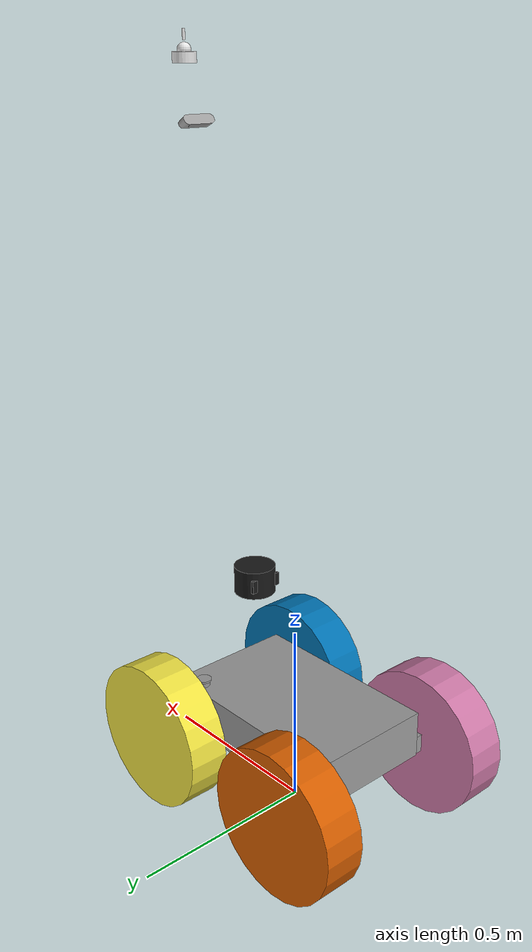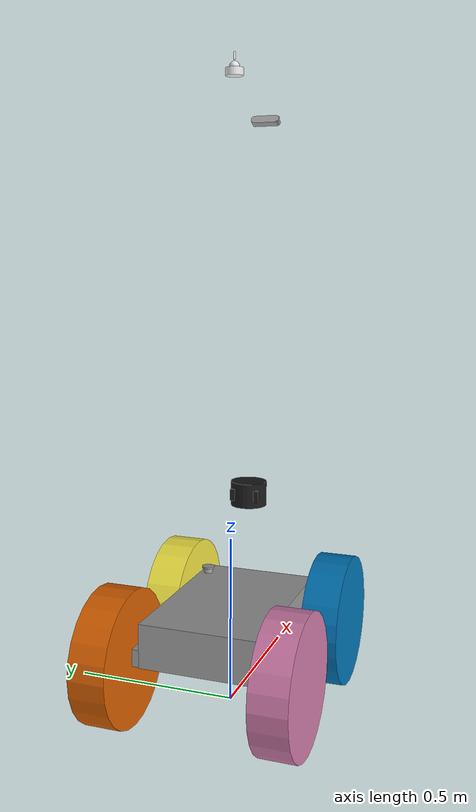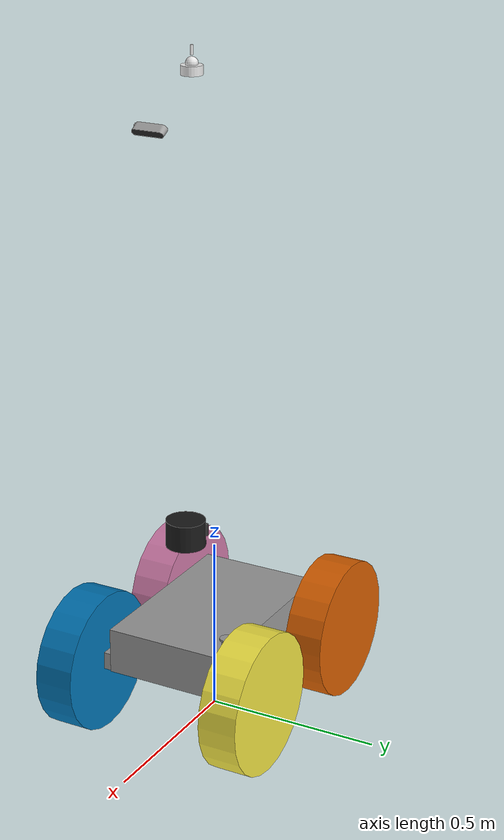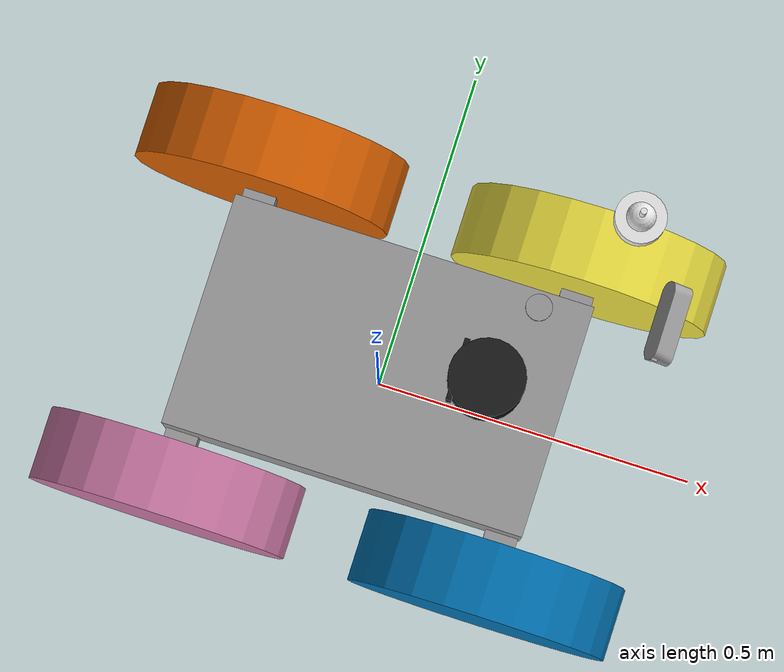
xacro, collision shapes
<?xml version="1.0" encoding="UTF-8"?>
<robot xmlns:xacro="http://wiki.ros.org/xacro" name="allie">

  <!-- Use this if parameters are set from the launch file, otherwise delete -->
  <xacro:arg name="prefix" default=""/>

  <xacro:arg name="use_mock_hardware" default="false"/>
  <xacro:arg name="mock_sensor_commands" default="false"/>
  <xacro:arg name="sim_gazebo_classic" default="false"/>
  <xacro:arg name="sim_gazebo" default="false"/>
  <xacro:arg name="simulation_controllers" default=""/>
  <xacro:arg name="attach_world" default="true"/>
  <xacro:arg name="pwm_config_file" default="$(find cororos2_bringup)/config/pwm.yaml"/>
  <xacro:property name="pwm_config" value="${xacro.load_yaml('$(arg pwm_config_file)')}"/>
  <xacro:arg name="device_path" default="${pwm_config['device_path']}"/>
  <xacro:arg name="channel_fl" default="${pwm_config['channel_fl']}"/>
  <xacro:arg name="channel_fr" default="${pwm_config['channel_fr']}"/>
  <xacro:arg name="channel_rl" default="${pwm_config['channel_rl']}"/>
  <xacro:arg name="channel_rr" default="${pwm_config['channel_rr']}"/>
  <xacro:arg name="pwm_min" default="${pwm_config['pwm_min']}"/>
  <xacro:arg name="pwm_neutral" default="${pwm_config['pwm_neutral']}"/>
  <xacro:arg name="pwm_max" default="${pwm_config['pwm_max']}"/>
  <xacro:arg name="min_active_pwm_delta" default="${pwm_config['min_active_pwm_delta']}"/>
  <xacro:arg name="wheel_radius" default="${pwm_config['wheel_radius']}"/>
  <xacro:arg name="max_wheel_speed_mps" default="${pwm_config['max_wheel_speed_mps']}"/>
  <xacro:arg name="invert_left" default="${pwm_config['invert_left']}"/>
  <xacro:arg name="invert_right" default="${pwm_config['invert_right']}"/>
  <xacro:arg name="invert_fl" default="${pwm_config.get('invert_fl', pwm_config['invert_left'])}"/>
  <xacro:arg name="invert_fr" default="${pwm_config.get('invert_fr', pwm_config['invert_right'])}"/>
  <xacro:arg name="invert_rl" default="${pwm_config.get('invert_rl', pwm_config['invert_left'])}"/>
  <xacro:arg name="invert_rr" default="${pwm_config.get('invert_rr', pwm_config['invert_right'])}"/>

  <xacro:include filename="$(find cororos2_description)/urdf/allie/allie_macro.xacro"/>
  <xacro:include filename="$(find cororos2_description)/urdf/allie/allie_macro.ros2_control.xacro"/>

  <xacro:if value="$(arg attach_world)">
    <!-- create link fixed to the "world" -->
    <link name="world"/>

    <!-- Load robot's macro with parameters -->
    <!-- set prefix if multiple robots are used -->
    <xacro:allie prefix="$(arg prefix)" parent="world">
      <origin xyz="0 0 0" rpy="0 0 0"/>          <!-- position robot in the world -->
    </xacro:allie>
  </xacro:if>

  <xacro:unless value="$(arg attach_world)">
    <xacro:allie prefix="$(arg prefix)" parent="">
      <origin xyz="0 0 0" rpy="0 0 0"/>
    </xacro:allie>
  </xacro:unless>

  <xacro:allie_ros2_control
    name="allie"
    prefix="$(arg prefix)"
    use_mock_hardware="$(arg use_mock_hardware)"
    mock_sensor_commands="$(arg mock_sensor_commands)"
    sim_gazebo_classic="$(arg sim_gazebo_classic)"
    sim_gazebo="$(arg sim_gazebo)"
    simulation_controllers="$(arg simulation_controllers)"
    device_path="$(arg device_path)"
    channel_fl="$(arg channel_fl)"
    channel_fr="$(arg channel_fr)"
    channel_rl="$(arg channel_rl)"
    channel_rr="$(arg channel_rr)"
    pwm_min="$(arg pwm_min)"
    pwm_neutral="$(arg pwm_neutral)"
    pwm_max="$(arg pwm_max)"
    min_active_pwm_delta="$(arg min_active_pwm_delta)"
    wheel_radius="$(arg wheel_radius)"
    max_wheel_speed_mps="$(arg max_wheel_speed_mps)"
    invert_left="$(arg invert_left)"
    invert_right="$(arg invert_right)"
    invert_fl="$(arg invert_fl)"
    invert_fr="$(arg invert_fr)"
    invert_rl="$(arg invert_rl)"
    invert_rr="$(arg invert_rr)"/>

</robot>

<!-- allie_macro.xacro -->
<robot xmlns:xacro="http://wiki.ros.org/xacro">
  <xacro:macro name="allie" params="prefix parent *origin">
    <!-- LINKS -->
    <!-- base footprint -->
    <link name="${prefix}base_footprint">
    </link>
    <!-- base link -->
    <link name="${prefix}base_link">
      <inertial>
        <origin xyz="0 0 0.09" rpy="0 0 0" />
        <mass value="26.6" />
        <inertia ixx="0.387" ixy="0" ixz="0" iyy="0.790" iyz="0" izz="0.962" />
      </inertial>

      <!-- collisions -->
      <collision name="chassis_main_collision">
        <origin xyz="0 0 0.05" rpy="0 0 0" />
        <geometry>
          <box size="0.555 0.355 0.13" />
        </geometry>
      </collision>
      <collision name="emergency_stop_bottom_collision">
        <origin xyz="0.2 0.15 0.125" rpy="0 0 0" />
        <geometry>
          <cylinder radius="0.015" length="0.015" />
        </geometry>
      </collision>
      <collision name="emergency_stop_top_collision">
        <origin xyz="0.2 0.15 0.135" rpy="0 0 0" />
        <geometry>
          <cylinder radius="0.02" length="0.005" />
        </geometry>
      </collision>
      <collision name="wheel_mount_front_collision">
        <origin xyz="0.249 0 0.011" rpy="0 0 0" />
        <geometry>
          <box size="0.05 0.52 0.05" />
        </geometry>
      </collision>
      <collision name="wheel_mount_rear_collision">
        <origin xyz="-0.249 0 0.011" rpy="0 0 0" />
        <geometry>
          <box size="0.05 0.52 0.05" />
        </geometry>
      </collision>
      <!-- visuals -->
      <visual name="chassis_main_visual">
        <origin xyz="0 0 0.05" rpy="0 0 0" />
        <geometry>
          <box size="0.555 0.355 0.13" />
        </geometry>
        <material name="chassis_main_visual_mat">
          <color rgba="0.6 0.6 0.6 1.0" />
        </material>
      </visual>
      <visual name="emergency_stop_bottom_visual">
        <origin xyz="0.2 0.15 0.125" rpy="0 0 0" />
        <geometry>
          <cylinder radius="0.015" length="0.015" />
        </geometry>
        <material name="emergency_stop_bottom_visual_mat">
          <color rgba="0.7059 0.7059 0.7059 1.0" />
        </material>
      </visual>
      <visual name="emergency_stop_top_visual">
        <origin xyz="0.2 0.15 0.135" rpy="0 0 0" />
        <geometry>
          <cylinder radius="0.02" length="0.005" />
        </geometry>
        <material name="emergency_stop_top_visual_mat">
          <color rgba="1.0 0.0 0.0 1.0" />
        </material>
      </visual>
      <visual name="wheel_mount_front_visual">
        <origin xyz="0.249 0 0.011" rpy="0 0 0" />
        <geometry>
          <box size="0.05 0.52 0.05" />
        </geometry>
        <material name="wheel_mount_front_visual_mat">
          <color rgba="0.6 0.6 0.6 1.0" />
        </material>
      </visual>
      <visual name="wheel_mount_rear_visual">
        <origin xyz="-0.249 0 0.011" rpy="0 0 0" />
        <geometry>
          <box size="0.05 0.52 0.05" />
        </geometry>
        <material name="wheel_mount_rear_visual_mat">
          <color rgba="0.6 0.6 0.6 1.0" />
        </material>
      </visual>
      <visual name="ouster_deck_visual">
        <origin xyz="0.175 0.01 0.3625" rpy="0 0 0" />
        <geometry>
          <box size="0.24 0.18 0.012" />
        </geometry>
        <material name="ouster_deck_visual_mat">
          <color rgba="0.7843 0.7843 0.7843 1.0" />
        </material>
      </visual>
      <visual name="beam1_visual">
        <origin xyz="0.255 0.07 0.24375" rpy="0 0 0" />
        <geometry>
          <box size="0.018 0.018 0.2375" />
        </geometry>
        <material name="beam_visual_mat">
          <color rgba="0.7843 0.7843 0.7843 1.0" />
        </material>
      </visual>
      <visual name="beam2_visual">
        <origin xyz="0.255 -0.05 0.24375" rpy="0 0 0" />
        <geometry>
          <box size="0.018 0.018 0.2375" />
        </geometry>
        <material name="beam_visual_mat" />
      </visual>
      <visual name="beam3_visual">
        <origin xyz="0.095 0.07 0.24375" rpy="0 0 0" />
        <geometry>
          <box size="0.018 0.018 0.2375" />
        </geometry>
        <material name="beam_visual_mat" />
      </visual>
      <visual name="beam4_visual">
        <origin xyz="0.095 -0.05 0.24375" rpy="0 0 0" />
        <geometry>
          <box size="0.018 0.018 0.2375" />
        </geometry>
        <material name="beam_visual_mat" />
      </visual>
      <visual name="sensor_mast_visual">
        <origin xyz="0.255 0.07 1.01625" rpy="0 0 0" />
        <geometry>
          <box size="0.025 0.025 1.3175" />
        </geometry>
        <material name="sensor_mast_visual_mat">
          <color rgba="0.7843 0.7843 0.7843 1.0" />
        </material>
      </visual>
      <visual name="camera_plate_visual">
        <origin xyz="0.2745 0.01 1.548" rpy="0 0 0" />
        <geometry>
          <box size="0.095 0.16 0.012" />
        </geometry>
        <material name="camera_plate_visual_mat">
          <color rgba="0.7843 0.7843 0.7843 1.0" />
        </material>
      </visual>
      <visual name="gps_board_visual">
        <origin xyz="0.27 0.09 1.675" rpy="0 0 0" />
        <geometry>
          <box size="0.12 0.08 0.012" />
        </geometry>
        <material name="gps_board_visual_mat">
          <color rgba="0.7843 0.7843 0.7843 1.0" />
        </material>
      </visual>
    </link>
    <!-- drive wheels -->
    <!-- front left wheel -->
    <link name="${prefix}front_left_wheel">
      <inertial>
        <origin xyz="0 0 0" rpy="0 0 0" />
        <mass value="5.124" />
        <inertia ixx="0.0576" ixy="0" ixz="0" iyy="0.105" iyz="0" izz="0.0576" />
      </inertial>
      <collision name="front_left_wheel_tire_collision">
        <origin xyz="0 0 0" rpy="-1.5708 0 0" />
        <geometry>
          <cylinder radius="0.2" length="0.11" />
        </geometry>
      </collision>
      <visual name="front_left_wheel_tire_visual">
        <origin xyz="0 0 0" rpy="0 0 0" />
        <geometry>
          <mesh filename="package://cororos2_description/meshes/allie/visual/wheel.dae" scale="1.1512 1.0 1.1512" />
        </geometry>
      </visual>
    </link>
    <!-- front right wheel -->
    <link name="${prefix}front_right_wheel">
      <inertial>
        <origin xyz="0 0 0" rpy="0 0 0" />
        <mass value="5.124" />
        <inertia ixx="0.0576" ixy="0" ixz="0" iyy="0.105" iyz="0" izz="0.0576" />
      </inertial>
      <collision name="front_right_wheel_tire_collision">
        <origin xyz="0 0 0" rpy="1.5708 0 0" />
        <geometry>
          <cylinder radius="0.2" length="0.11" />
        </geometry>
      </collision>
      <visual name="front_right_wheel_tire_visual">
        <origin xyz="0 0 0" rpy="0 0 0" />
        <geometry>
          <mesh filename="package://cororos2_description/meshes/allie/visual/wheel.dae" scale="1.1512 1.0 1.1512" />
        </geometry>
      </visual>
    </link>
    <!-- rear left wheel -->
    <link name="${prefix}rear_left_wheel">
      <inertial>
        <origin xyz="0 0 0" rpy="0 0 0" />
        <mass value="5.124" />
        <inertia ixx="0.0576" ixy="0" ixz="0" iyy="0.105" iyz="0" izz="0.0576" />
      </inertial>
      <collision name="rear_left_wheel_tire_collision">
        <origin xyz="0 0 0" rpy="-1.5708 0 0" />
        <geometry>
          <cylinder radius="0.2" length="0.11" />
        </geometry>
      </collision>
      <visual name="rear_left_wheel_tire_visual">
        <origin xyz="0 0 0" rpy="0 0 0" />
        <geometry>
          <mesh filename="package://cororos2_description/meshes/allie/visual/wheel.dae" scale="1.1512 1.0 1.1512" />
        </geometry>
      </visual>
    </link>
    <!-- rear right wheel -->
    <link name="${prefix}rear_right_wheel">
      <inertial>
        <origin xyz="0 0 0" rpy="0 0 0" />
        <mass value="5.124" />
        <inertia ixx="0.0576" ixy="0" ixz="0" iyy="0.105" iyz="0" izz="0.0576" />
      </inertial>
      <collision name="rear_right_wheel_tire_collision">
        <origin xyz="0 0 0" rpy="1.5708 0 0" />
        <geometry>
          <cylinder radius="0.2" length="0.11" />
        </geometry>
      </collision>
      <visual name="rear_right_wheel_tire_visual">
        <origin xyz="0 0 0" rpy="0 0 0" />
        <geometry>
          <mesh filename="package://cororos2_description/meshes/allie/visual/wheel.dae" scale="1.1512 1.0 1.1512" />
        </geometry>
      </visual>
    </link>
    <!-- sensor and light frames -->
    <!-- IMU frame -->
    <link name="${prefix}imu_sensor_link">
      <inertial>
        <origin xyz="0 0 0" rpy="0 0 0" />
        <mass value="1e-6" />
        <inertia ixx="1e-9" ixy="0" ixz="0" iyy="1e-9" iyz="0" izz="1e-9" />
      </inertial>
    </link>
    <!-- GPS frame -->
    <link name="${prefix}gps_link">
      <inertial>
        <origin xyz="0 0 0" rpy="0 0 0" />
        <mass value="1e-6" />
        <inertia ixx="1e-9" ixy="0" ixz="0" iyy="1e-9" iyz="0" izz="1e-9" />
      </inertial>
      <collision name="gps_base_collision">
        <origin xyz="0 0 0.012" rpy="0 0 0" />
        <geometry>
          <cylinder radius="0.028" length="0.024" />
        </geometry>
      </collision>
      <collision name="gps_cap_collision">
        <origin xyz="0 0 0.028" rpy="0 0 0" />
        <geometry>
          <sphere radius="0.016" />
        </geometry>
      </collision>
      <collision name="gps_antenna_tip_collision">
        <origin xyz="0 0 0.060" rpy="0 0 0" />
        <geometry>
          <cylinder radius="0.0035" length="0.024" />
        </geometry>
      </collision>
      <visual name="gps_base_visual">
        <origin xyz="0 0 0.012" rpy="0 0 0" />
        <geometry>
          <cylinder radius="0.028" length="0.024" />
        </geometry>
        <material name="gps_base_visual_mat">
          <color rgba="0.92 0.92 0.92 1.0" />
        </material>
      </visual>
      <visual name="gps_cap_visual">
        <origin xyz="0 0 0.028" rpy="0 0 0" />
        <geometry>
          <sphere radius="0.016" />
        </geometry>
        <material name="gps_cap_visual_mat">
          <color rgba="0.96 0.96 0.96 1.0" />
        </material>
      </visual>
      <visual name="gps_antenna_tip_visual">
        <origin xyz="0 0 0.060" rpy="0 0 0" />
        <geometry>
          <cylinder radius="0.0035" length="0.024" />
        </geometry>
        <material name="gps_antenna_tip_visual_mat">
          <color rgba="0.2 0.2 0.2 1.0" />
        </material>
      </visual>
    </link>
    <!-- front RGB-D camera frame -->
    <link name="${prefix}rgbd_front_link">
      <inertial>
        <origin xyz="0 0 0" rpy="0 0 0" />
        <mass value="1e-6" />
        <inertia ixx="1e-9" ixy="0" ixz="0" iyy="1e-9" iyz="0" izz="1e-9" />
      </inertial>
      <collision name="d435i_realsense_camera_collision">
        <origin xyz="-0.017356 0 -0.009938" rpy="0 0 0" />
        <geometry>
          <mesh filename="package://cororos2_description/meshes/allie/visual/realsense_d435.dae" scale="0.001 0.001 0.001" />
        </geometry>
      </collision>
      <visual name="d435i_realsense_camera_visual">
        <origin xyz="-0.017356 0 -0.009938" rpy="0 0 0" />
        <geometry>
          <mesh filename="package://cororos2_description/meshes/allie/visual/realsense_d435.dae" scale="0.001 0.001 0.001" />
        </geometry>
      </visual>
    </link>
    <!-- Ouster sensor frame -->
    <link name="${prefix}ouster_link">
      <inertial>
        <origin xyz="0 0 0" rpy="0 0 0" />
        <mass value="1e-6" />
        <inertia ixx="1e-9" ixy="0" ixz="0" iyy="1e-9" iyz="0" izz="1e-9" />
      </inertial>
      <collision name="ouster_body_collision">
        <origin xyz="0 0 0" rpy="0 0 0" />
        <geometry>
          <cylinder radius="0.055" length="0.075" />
        </geometry>
      </collision>
      <collision name="ouster_window_collision">
        <origin xyz="0.042 0 0" rpy="0 0 0" />
        <geometry>
          <box size="0.008 0.09 0.035" />
        </geometry>
      </collision>
      <visual name="ouster_body_visual">
        <origin xyz="0 0 0" rpy="0 0 0" />
        <geometry>
          <cylinder radius="0.055" length="0.075" />
        </geometry>
        <material name="ouster_body_visual_mat">
          <color rgba="0.1 0.1 0.1 1.0" />
        </material>
      </visual>
      <visual name="ouster_window_visual">
        <origin xyz="0.042 0 0" rpy="0 0 0" />
        <geometry>
          <box size="0.008 0.09 0.035" />
        </geometry>
        <material name="ouster_window_visual_mat">
          <color rgba="0.2 0.25 0.3 1.0" />
        </material>
      </visual>
    </link>
    <!-- Ouster internal IMU frame -->
    <link name="${prefix}ouster_imu_link">
      <inertial>
        <origin xyz="0 0 0" rpy="0 0 0" />
        <mass value="1e-6" />
        <inertia ixx="1e-9" ixy="0" ixz="0" iyy="1e-9" iyz="0" izz="1e-9" />
      </inertial>
    </link>
    <!-- JOINTS -->
    <!-- base joints -->
    <!-- world to base footprint -->
    <xacro:if value="${parent != ''}">
      <joint name="${prefix}base_joint" type="fixed">
        <xacro:insert_block name="origin" />
        <parent link="${parent}" />
        <child link="${prefix}base_footprint" />
      </joint>
    </xacro:if>
    <!-- base footprint to base link -->
    <joint name="${prefix}base_footprint_to_base_link" type="fixed">
      <parent link="${prefix}base_footprint" />
      <child link="${prefix}base_link" />
      <origin xyz="0 0 0.2" rpy="0 0 0" />
    </joint>
    <!-- wheel joints -->
    <!-- front left wheel joint -->
    <joint name="${prefix}front_left_wheel_joint" type="continuous">
      <parent link="${prefix}base_link" />
      <child link="${prefix}front_left_wheel" />
      <origin xyz="0.25 0.255 0" rpy="0 -0 0" />
      <axis xyz="0 1 0" />
      <limit effort="53.5" velocity="13.65" />
    </joint>
    <!-- rear left wheel joint -->
    <joint name="${prefix}rear_left_wheel_joint" type="continuous">
      <parent link="${prefix}base_link" />
      <child link="${prefix}rear_left_wheel" />
      <origin xyz="-0.25 0.255 0" rpy="0 -0 0" />
      <axis xyz="0 1 0" />
      <limit effort="53.5" velocity="13.65" />
    </joint>
    <!-- rear right wheel joint -->
    <joint name="${prefix}rear_right_wheel_joint" type="continuous">
      <parent link="${prefix}base_link" />
      <child link="${prefix}rear_right_wheel" />
      <origin xyz="-0.25 -0.255 0" rpy="0 -0 0" />
      <axis xyz="0 1 0" />
      <limit effort="53.5" velocity="13.65" />
    </joint>
    <!-- front right wheel joint -->
    <joint name="${prefix}front_right_wheel_joint" type="continuous">
      <parent link="${prefix}base_link" />
      <child link="${prefix}front_right_wheel" />
      <origin xyz="0.25 -0.255 0" rpy="0 -0 0" />
      <axis xyz="0 1 0" />
      <limit effort="53.5" velocity="13.65" />
    </joint>
    <!-- sensor and light frame joints -->
    <!-- base link to IMU frame -->
    <joint name="${prefix}base_link_to_imu_sensor_link_joint" type="fixed">
      <parent link="${prefix}base_link" />
      <child link="${prefix}imu_sensor_link" />
      <origin xyz="0 0 -0.025" rpy="0 0 0" />
    </joint>
    <!-- base link to GPS frame -->
    <joint name="${prefix}base_link_to_gps_link_joint" type="fixed">
      <parent link="${prefix}base_link" />
      <child link="${prefix}gps_link" />
      <origin xyz="0.27 0.09 1.681" rpy="0 0 0" />
    </joint>
    <!-- base link to front RGB-D camera frame -->
    <joint name="${prefix}base_link_to_rgbd_front_link_joint" type="fixed">
      <parent link="${prefix}base_link" />
      <child link="${prefix}rgbd_front_link" />
      <origin xyz="0.34 0.01 1.545" rpy="0 0.5236 0" />
    </joint>
    <!-- base link to Ouster sensor frame -->
    <joint name="${prefix}base_link_to_ouster_link_joint" type="fixed">
      <parent link="${prefix}base_link" />
      <child link="${prefix}ouster_link" />
      <origin xyz="0.16 0 0.405" rpy="0 0 3.141592653589793" />
    </joint>
    <!-- Ouster sensor frame to Ouster IMU frame -->
    <joint name="${prefix}ouster_link_to_ouster_imu_link_joint" type="fixed">
      <parent link="${prefix}ouster_link" />
      <child link="${prefix}ouster_imu_link" />
      <origin xyz="0 0 0" rpy="0 0 0" />
    </joint>

    <!-- GAZEBO EXTENSIONS -->
    <!-- sensor definitions -->
    <gazebo reference="${prefix}imu_sensor_link">
      <sensor name="imu_sensor" type="imu">
        <always_on>1</always_on>
        <update_rate>50</update_rate>
        <topic>imu</topic>
        <gz_frame_id>${prefix}imu_sensor_link</gz_frame_id>
        <imu>
          <enable_orientation>0</enable_orientation>
          <angular_velocity>
            <x>
              <noise type="gaussian">
                <mean>0</mean>
                <stddev>0.009</stddev>
                <bias_mean>0.00075</bias_mean>
                <bias_stddev>0.005</bias_stddev>
                <dynamic_bias_stddev>0.00002</dynamic_bias_stddev>
                <dynamic_bias_correlation_time>400.0</dynamic_bias_correlation_time>
                <precision>0.00025</precision>
              </noise>
            </x>
            <y>
              <noise type="gaussian">
                <mean>0</mean>
                <stddev>0.009</stddev>
                <bias_mean>0.00075</bias_mean>
                <bias_stddev>0.005</bias_stddev>
                <dynamic_bias_stddev>0.00002</dynamic_bias_stddev>
                <dynamic_bias_correlation_time>400.0</dynamic_bias_correlation_time>
                <precision>0.00025</precision>
              </noise>
            </y>
            <z>
              <noise type="gaussian">
                <mean>0</mean>
                <stddev>0.009</stddev>
                <bias_mean>0.00075</bias_mean>
                <bias_stddev>0.005</bias_stddev>
                <dynamic_bias_stddev>0.00002</dynamic_bias_stddev>
                <dynamic_bias_correlation_time>400.0</dynamic_bias_correlation_time>
                <precision>0.00025</precision>
              </noise>
            </z>
          </angular_velocity>
          <linear_acceleration>
            <x>
              <noise type="gaussian">
                <mean>0</mean>
                <stddev>0.021</stddev>
                <bias_mean>0.05</bias_mean>
                <bias_stddev>0.0075</bias_stddev>
                <dynamic_bias_stddev>0.000375</dynamic_bias_stddev>
                <dynamic_bias_correlation_time>175.0</dynamic_bias_correlation_time>
                <precision>0.005</precision>
              </noise>
            </x>
            <y>
              <noise type="gaussian">
                <mean>0</mean>
                <stddev>0.021</stddev>
                <bias_mean>0.05</bias_mean>
                <bias_stddev>0.0075</bias_stddev>
                <dynamic_bias_stddev>0.000375</dynamic_bias_stddev>
                <dynamic_bias_correlation_time>175.0</dynamic_bias_correlation_time>
                <precision>0.005</precision>
              </noise>
            </y>
            <z>
              <noise type="gaussian">
                <mean>0</mean>
                <stddev>0.021</stddev>
                <bias_mean>0.05</bias_mean>
                <bias_stddev>0.0075</bias_stddev>
                <dynamic_bias_stddev>0.000375</dynamic_bias_stddev>
                <dynamic_bias_correlation_time>175.0</dynamic_bias_correlation_time>
                <precision>0.005</precision>
              </noise>
            </z>
          </linear_acceleration>
        </imu>
      </sensor>
    </gazebo>
    <gazebo reference="${prefix}gps_link">
      <sensor name="navsat" type="navsat">
        <always_on>1</always_on>
        <update_rate>5</update_rate>
        <topic>navsat</topic>
        <gz_frame_id>${prefix}gps_link</gz_frame_id>
      </sensor>
    </gazebo>
    <gazebo reference="${prefix}rgbd_front_link">
      <sensor name="rgbd_front" type="rgbd_camera">
        <always_on>1</always_on>
        <update_rate>30</update_rate>
        <gz_frame_id>${prefix}rgbd_front_link</gz_frame_id>
        <camera name="rgbd_front">
          <horizontal_fov>1.50098</horizontal_fov>
          <lens>
            <intrinsics>
              <fx>343.159</fx>
              <fy>343.159</fy>
              <cx>319.5</cx>
              <cy>179.5</cy>
              <s>0</s>
            </intrinsics>
          </lens>
          <distortion>
            <k1>0.0</k1>
            <k2>0.0</k2>
            <k3>0.0</k3>
            <p1>0.0</p1>
            <p2>0.0</p2>
            <center>0.5 0.5</center>
          </distortion>
          <image>
            <width>640</width>
            <height>360</height>
            <format>R8G8B8</format>
          </image>
          <clip>
            <near>0.01</near>
            <far>300</far>
          </clip>
          <depth_camera>
            <clip>
              <near>0.1</near>
              <far>10</far>
            </clip>
          </depth_camera>
          <noise>
            <type>gaussian</type>
            <mean>0</mean>
            <stddev>0.007</stddev>
          </noise>
        </camera>
      </sensor>
    </gazebo>
    <gazebo reference="${prefix}ouster_link">
      <sensor name="ouster_lidar" type="gpu_lidar">
        <visualize>0</visualize>
        <update_rate>10</update_rate>
        <gz_frame_id>${prefix}ouster_link</gz_frame_id>
        <lidar>
          <scan>
            <horizontal>
              <samples>1800</samples>
              <resolution>1</resolution>
              <min_angle>-3.1459</min_angle>
              <max_angle>3.1459</max_angle>
            </horizontal>
            <vertical>
              <samples>128</samples>
              <resolution>1</resolution>
              <min_angle>-0.785398</min_angle>
              <max_angle>0.785398</max_angle>
            </vertical>
          </scan>
          <range>
            <min>0.05</min>
            <max>100</max>
            <resolution>0.01</resolution>
          </range>
          <noise>
            <type>gaussian</type>
            <mean>0</mean>
            <stddev>0.01</stddev>
          </noise>
        </lidar>
      </sensor>
    </gazebo>
  </xacro:macro>
</robot>
